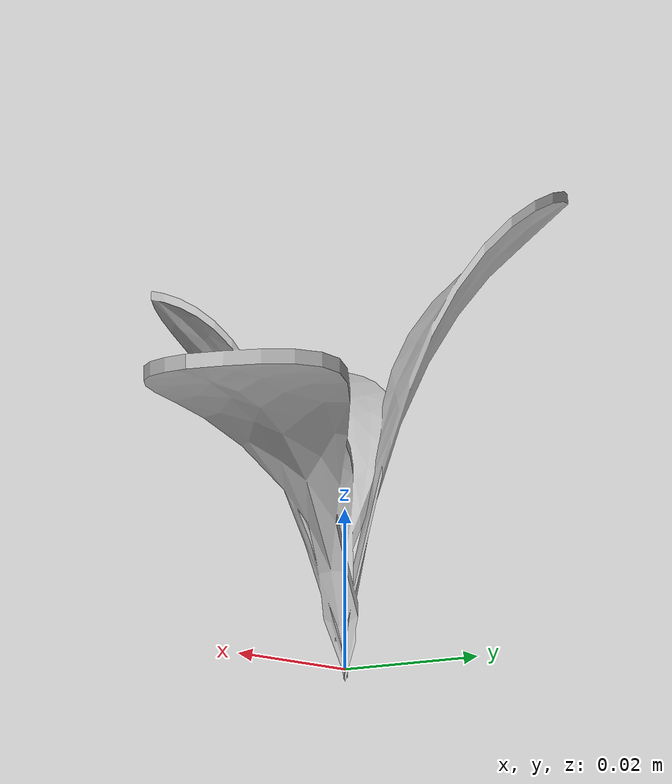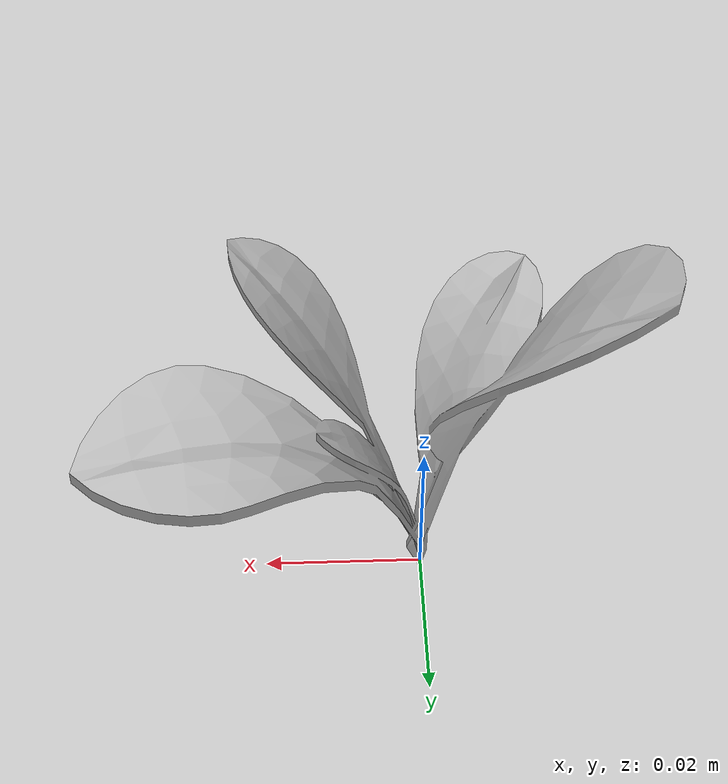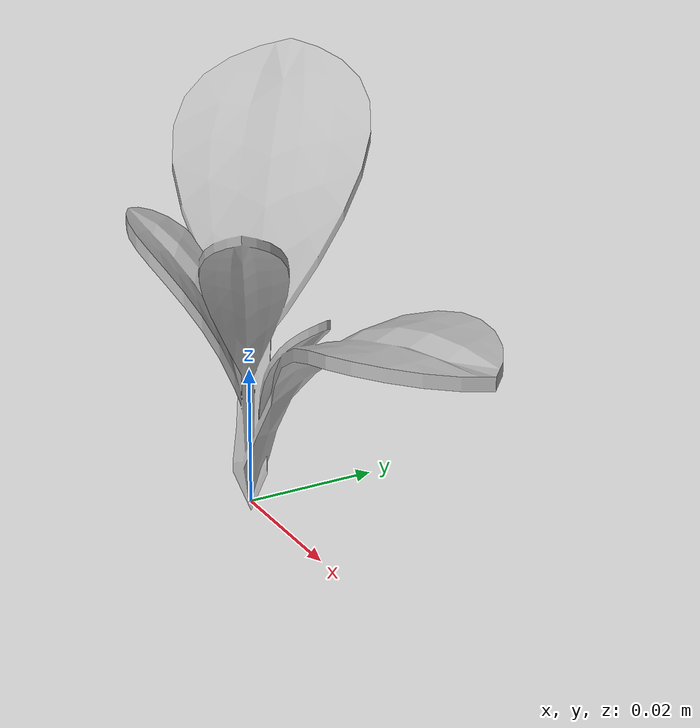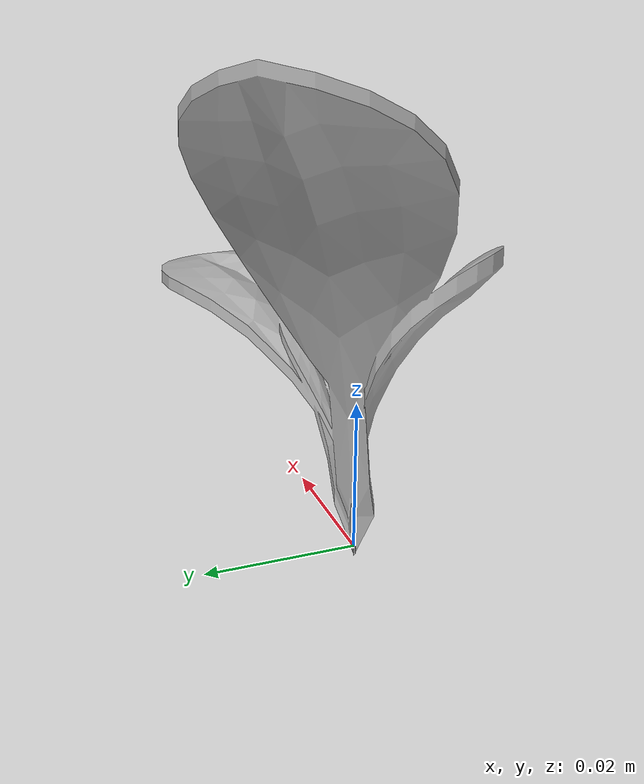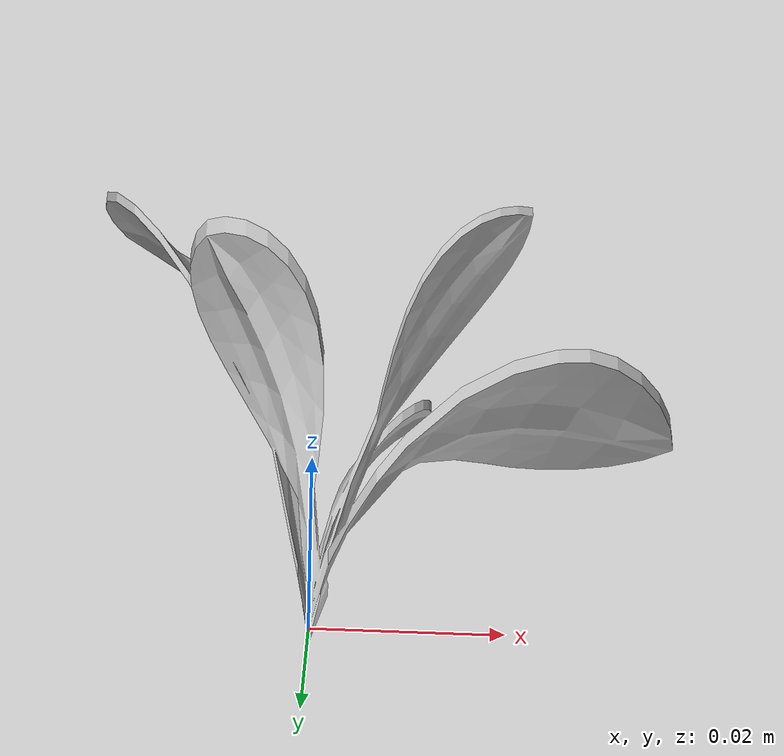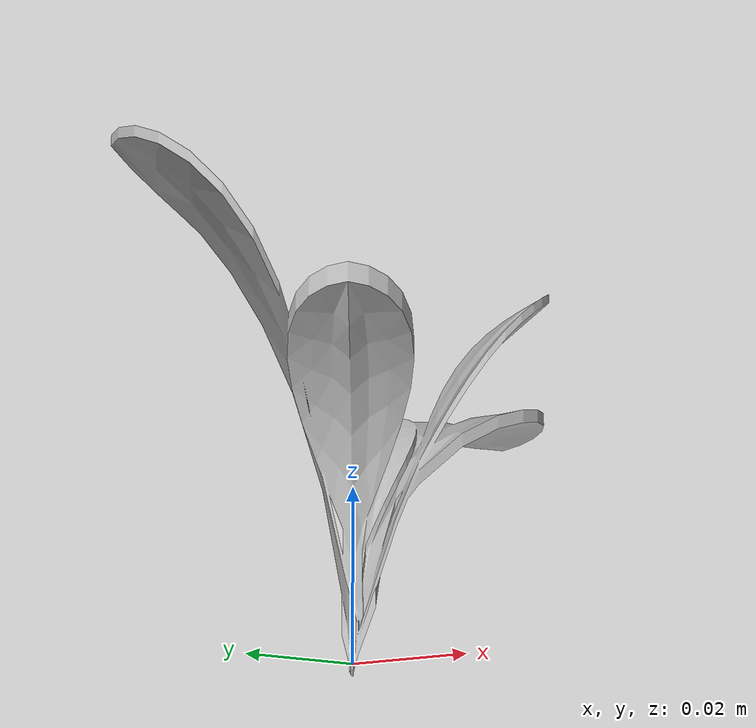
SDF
<sdf version="1.6">
  <model name="sugar_beet_32">
    <static>true</static>
    <link name="body">
      <visual name="visual">
        <geometry>
          <mesh>
            <uri>file:///sugar_beet_32/media/sugar_beet.dae</uri>
          </mesh>
        </geometry>
      </visual>
    </link>
  </model>
</sdf>
